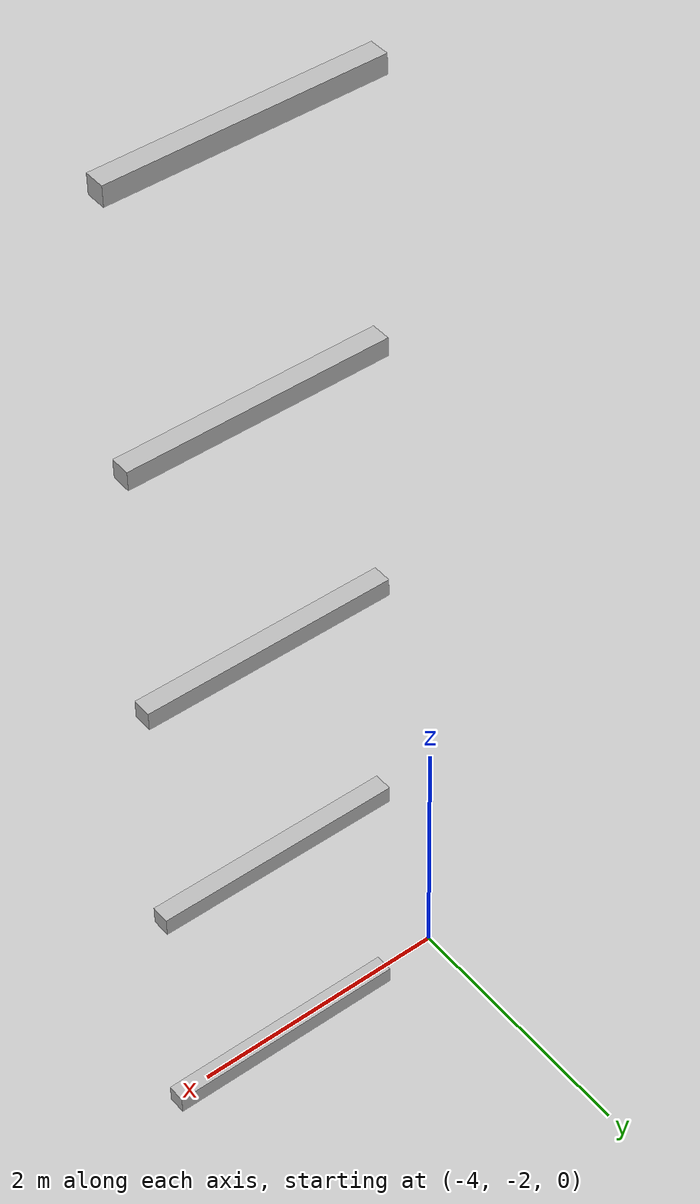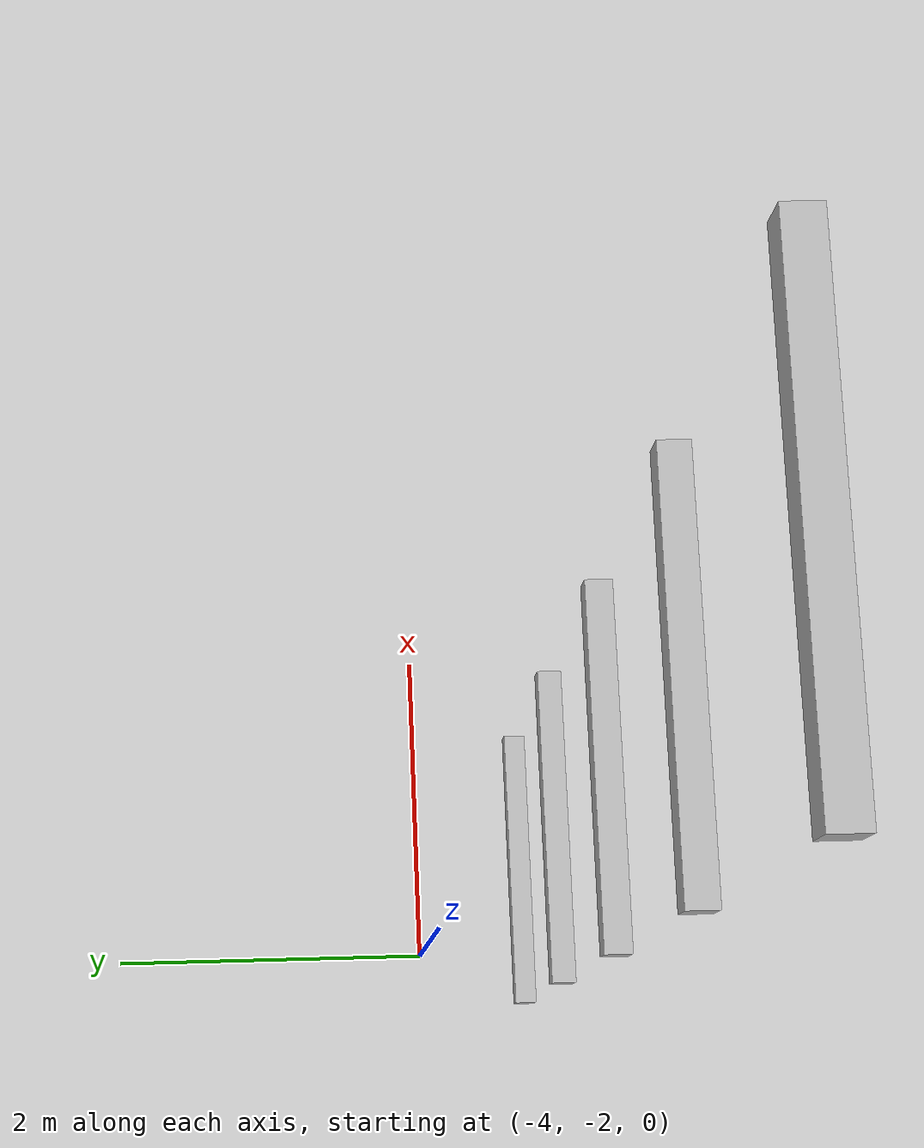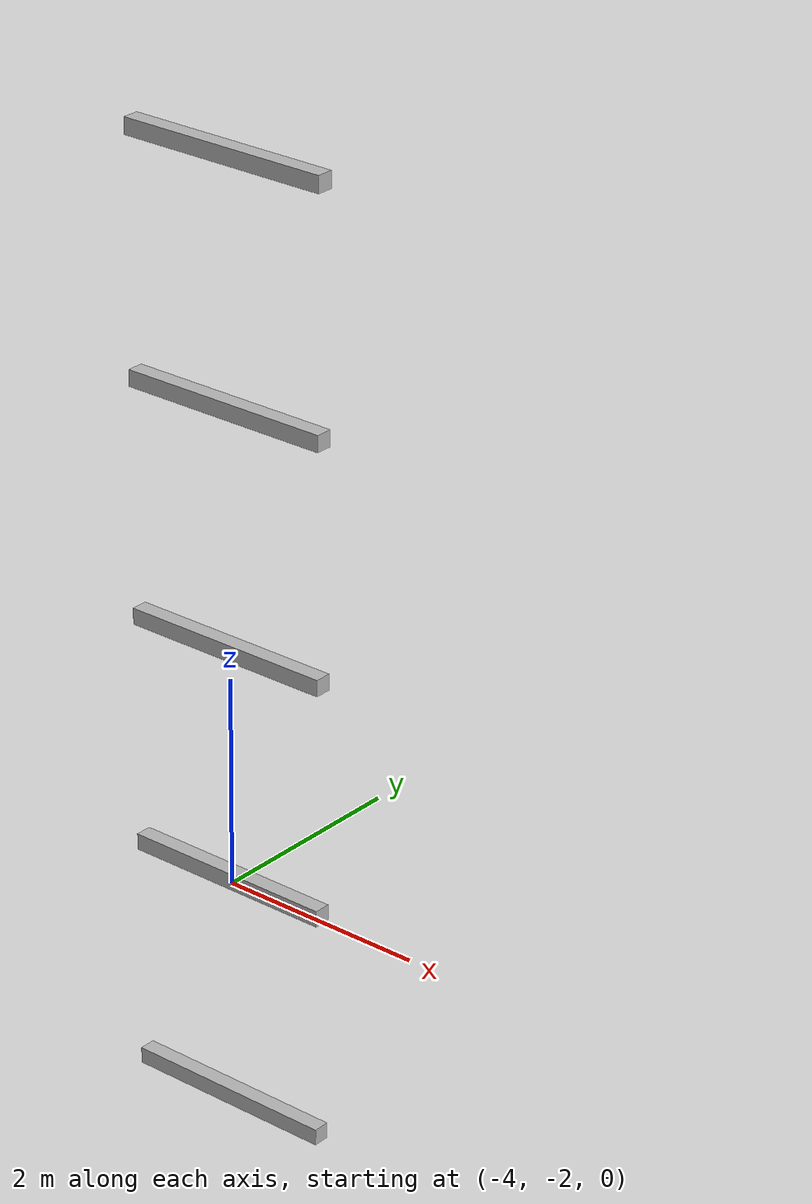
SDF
<sdf version="1.7">
 <world name="default">
  <model name="orthogonal_747_2.000.15_TS">
   <static>1</static>
   <link name="x_link_0_1_1">
    <inertial>
     <mass>1</mass>
     <inertia>
      <ixx>0.166667</ixx>
      <ixy>0</ixy>
      <ixz>0</ixz>
      <iyy>0.166667</iyy>
      <iyz>0</iyz>
      <izz>0.166667</izz>
     </inertia>
    </inertial>
    <pose>3.225 2.15 1.075 0 -0 0</pose>
    <visual name="visual_0">
     <laser_retro>183</laser_retro>
     <geometry><box><size>2 1e-06 0.15</size></box></geometry>
     <material>
      <script><name>Gazebo/Grey</name><uri>file://media/materials/scripts/gazebo.material</uri></script>
      <shader type="pixel"><normal_map>__default__</normal_map></shader>
      <ambient>0.678 0.498 0.659 1</ambient>
      <diffuse>0.7 0.7 0.7 1</diffuse>
      <specular>0.01 0.01 0.01 1</specular>
      <emissive>0 0 0 1</emissive>
     </material>
     <pose>0 -0.075 0 0 -0 0</pose>
     <transparency>1</transparency>
    </visual>
    <visual name="visual_1">
     <laser_retro>184</laser_retro>
     <geometry><box><size>2 1e-06 0.15</size></box></geometry>
     <material>
      <script><name>Gazebo/Grey</name><uri>file://media/materials/scripts/gazebo.material</uri></script>
      <shader type="pixel"><normal_map>__default__</normal_map></shader>
      <ambient>0.447 0.624 0.812 1</ambient>
      <diffuse>0.7 0.7 0.7 1</diffuse>
      <specular>0.01 0.01 0.01 1</specular>
      <emissive>0 0 0 1</emissive>
     </material>
     <pose>0 0.075 0 0 -0 0</pose>
     <transparency>1</transparency>
    </visual>
    <visual name="visual_2">
     <laser_retro>185</laser_retro>
     <geometry><box><size>2 0.15 1e-06</size></box></geometry>
     <material>
      <script><name>Gazebo/Grey</name><uri>file://media/materials/scripts/gazebo.material</uri></script>
      <shader type="pixel"><normal_map>__default__</normal_map></shader>
      <ambient>0.988 0.686 0.243 1</ambient>
      <diffuse>0.7 0.7 0.7 1</diffuse>
      <specular>0.01 0.01 0.01 1</specular>
      <emissive>0 0 0 1</emissive>
     </material>
     <pose>0 0 -0.075 0 -0 0</pose>
     <transparency>1</transparency>
    </visual>
    <visual name="visual_3">
     <laser_retro>186</laser_retro>
     <geometry><box><size>1e-06 0.15 0.15</size></box></geometry>
     <material>
      <script><name>Gazebo/Grey</name><uri>file://media/materials/scripts/gazebo.material</uri></script>
      <shader type="pixel"><normal_map>__default__</normal_map></shader>
      <ambient>0.988 0.914 0.31 1</ambient>
      <diffuse>0.7 0.7 0.7 1</diffuse>
      <specular>0.01 0.01 0.01 1</specular>
      <emissive>0 0 0 1</emissive>
     </material>
     <pose>1 0 0 0 -0 0</pose>
     <transparency>1</transparency>
    </visual>
    <visual name="visual_4">
     <laser_retro>187</laser_retro>
     <geometry><box><size>2 0.15 1e-06</size></box></geometry>
     <material>
      <script><name>Gazebo/Grey</name><uri>file://media/materials/scripts/gazebo.material</uri></script>
      <shader type="pixel"><normal_map>__default__</normal_map></shader>
      <ambient>0.937 0.161 0.161 1</ambient>
      <diffuse>0.7 0.7 0.7 1</diffuse>
      <specular>0.01 0.01 0.01 1</specular>
      <emissive>0 0 0 1</emissive>
     </material>
     <pose>0 0 0.075 0 -0 0</pose>
     <transparency>1</transparency>
    </visual>
    <visual name="visual_5">
     <laser_retro>188</laser_retro>
     <geometry><box><size>1e-06 0.15 0.15</size></box></geometry>
     <material>
      <script><name>Gazebo/Grey</name><uri>file://media/materials/scripts/gazebo.material</uri></script>
      <shader type="pixel"><normal_map>__default__</normal_map></shader>
      <ambient>0.541 0.886 0.204 1</ambient>
      <diffuse>0.7 0.7 0.7 1</diffuse>
      <specular>0.01 0.01 0.01 1</specular>
      <emissive>0 0 0 1</emissive>
     </material>
     <pose>-1 0 0 0 -0 0</pose>
     <transparency>1</transparency>
    </visual>
    <visual name="visual_texture">
     <geometry><box><size>1.9998 0.149985 0.149985</size></box></geometry>
     <material>
      <script>
       <uri>model://BASE_MODELS/simple_block_v2_textured/materials/scripts</uri>
       <uri>model://BASE_MODELS/simple_block_v2_textured/materials/textures</uri>
       <name>metal</name>
      </script>
     </material>
     <laser_retro>189</laser_retro>
    </visual>
    <collision name="collision">
     <geometry><box><size>2 0.15 0.15</size></box></geometry>
     <surface>
      <friction>
       <ode><mu>1</mu><mu2>1</mu2><fdir1>0 0 0</fdir1><slip1>0</slip1><slip2>0</slip2></ode>
       <torsional>
        <coefficient>1</coefficient>
        <patch_radius>0</patch_radius>
        <surface_radius>0</surface_radius>
        <use_patch_radius>1</use_patch_radius>
        <ode><slip>0</slip></ode>
       </torsional>
      </friction>
      <bounce><restitution_coefficient>0</restitution_coefficient><threshold>1e+06</threshold></bounce>
      <contact>
       <collide_without_contact>0</collide_without_contact>
       <collide_without_contact_bitmask>1</collide_without_contact_bitmask>
       <collide_bitmask>1</collide_bitmask>
       <ode>
        <soft_cfm>0</soft_cfm>
        <soft_erp>0.2</soft_erp>
        <kp>1e+13</kp>
        <kd>1</kd>
        <max_vel>0.01</max_vel>
        <min_depth>0</min_depth>
       </ode>
       <bullet>
        <split_impulse>1</split_impulse>
        <split_impulse_penetration_threshold>-0.01</split_impulse_penetration_threshold>
        <soft_cfm>0</soft_cfm>
        <soft_erp>0.2</soft_erp>
        <kp>1e+13</kp>
        <kd>1</kd>
       </bullet>
      </contact>
     </surface>
    </collision>
   </link>
   <link name="x_link_1_1_1">
    <inertial>
     <mass>1</mass>
     <inertia>
      <ixx>0.166667</ixx>
      <ixy>0</ixy>
      <ixz>0</ixz>
      <iyy>0.166667</iyy>
      <iyz>0</iyz>
      <izz>0.166667</izz>
     </inertia>
    </inertial>
    <pose>3.225 2.15 3.225 0 -0 0</pose>
    <visual name="visual_0">
     <laser_retro>995</laser_retro>
     <geometry><box><size>2 1e-06 0.15</size></box></geometry>
     <material>
      <script><name>Gazebo/Grey</name><uri>file://media/materials/scripts/gazebo.material</uri></script>
      <shader type="pixel"><normal_map>__default__</normal_map></shader>
      <ambient>0.678 0.498 0.659 1</ambient>
      <diffuse>0.7 0.7 0.7 1</diffuse>
      <specular>0.01 0.01 0.01 1</specular>
      <emissive>0 0 0 1</emissive>
     </material>
     <pose>0 -0.075 0 0 -0 0</pose>
     <transparency>1</transparency>
    </visual>
    <visual name="visual_1">
     <laser_retro>996</laser_retro>
     <geometry><box><size>2 1e-06 0.15</size></box></geometry>
     <material>
      <script><name>Gazebo/Grey</name><uri>file://media/materials/scripts/gazebo.material</uri></script>
      <shader type="pixel"><normal_map>__default__</normal_map></shader>
      <ambient>0.447 0.624 0.812 1</ambient>
      <diffuse>0.7 0.7 0.7 1</diffuse>
      <specular>0.01 0.01 0.01 1</specular>
      <emissive>0 0 0 1</emissive>
     </material>
     <pose>0 0.075 0 0 -0 0</pose>
     <transparency>1</transparency>
    </visual>
    <visual name="visual_2">
     <laser_retro>997</laser_retro>
     <geometry><box><size>2 0.15 1e-06</size></box></geometry>
     <material>
      <script><name>Gazebo/Grey</name><uri>file://media/materials/scripts/gazebo.material</uri></script>
      <shader type="pixel"><normal_map>__default__</normal_map></shader>
      <ambient>0.988 0.686 0.243 1</ambient>
      <diffuse>0.7 0.7 0.7 1</diffuse>
      <specular>0.01 0.01 0.01 1</specular>
      <emissive>0 0 0 1</emissive>
     </material>
     <pose>0 0 -0.075 0 -0 0</pose>
     <transparency>1</transparency>
    </visual>
    <visual name="visual_3">
     <laser_retro>998</laser_retro>
     <geometry><box><size>1e-06 0.15 0.15</size></box></geometry>
     <material>
      <script><name>Gazebo/Grey</name><uri>file://media/materials/scripts/gazebo.material</uri></script>
      <shader type="pixel"><normal_map>__default__</normal_map></shader>
      <ambient>0.988 0.914 0.31 1</ambient>
      <diffuse>0.7 0.7 0.7 1</diffuse>
      <specular>0.01 0.01 0.01 1</specular>
      <emissive>0 0 0 1</emissive>
     </material>
     <pose>1 0 0 0 -0 0</pose>
     <transparency>1</transparency>
    </visual>
    <visual name="visual_4">
     <laser_retro>999</laser_retro>
     <geometry><box><size>2 0.15 1e-06</size></box></geometry>
     <material>
      <script><name>Gazebo/Grey</name><uri>file://media/materials/scripts/gazebo.material</uri></script>
      <shader type="pixel"><normal_map>__default__</normal_map></shader>
      <ambient>0.937 0.161 0.161 1</ambient>
      <diffuse>0.7 0.7 0.7 1</diffuse>
      <specular>0.01 0.01 0.01 1</specular>
      <emissive>0 0 0 1</emissive>
     </material>
     <pose>0 0 0.075 0 -0 0</pose>
     <transparency>1</transparency>
    </visual>
    <visual name="visual_5">
     <laser_retro>1000</laser_retro>
     <geometry><box><size>1e-06 0.15 0.15</size></box></geometry>
     <material>
      <script><name>Gazebo/Grey</name><uri>file://media/materials/scripts/gazebo.material</uri></script>
      <shader type="pixel"><normal_map>__default__</normal_map></shader>
      <ambient>0.541 0.886 0.204 1</ambient>
      <diffuse>0.7 0.7 0.7 1</diffuse>
      <specular>0.01 0.01 0.01 1</specular>
      <emissive>0 0 0 1</emissive>
     </material>
     <pose>-1 0 0 0 -0 0</pose>
     <transparency>1</transparency>
    </visual>
    <visual name="visual_texture">
     <geometry><box><size>1.9998 0.149985 0.149985</size></box></geometry>
     <material>
      <script>
       <uri>model://BASE_MODELS/simple_block_v2_textured/materials/scripts</uri>
       <uri>model://BASE_MODELS/simple_block_v2_textured/materials/textures</uri>
       <name>metal</name>
      </script>
     </material>
     <laser_retro>1001</laser_retro>
    </visual>
    <collision name="collision">
     <geometry><box><size>2 0.15 0.15</size></box></geometry>
     <surface>
      <friction>
       <ode><mu>1</mu><mu2>1</mu2><fdir1>0 0 0</fdir1><slip1>0</slip1><slip2>0</slip2></ode>
       <torsional>
        <coefficient>1</coefficient>
        <patch_radius>0</patch_radius>
        <surface_radius>0</surface_radius>
        <use_patch_radius>1</use_patch_radius>
        <ode><slip>0</slip></ode>
       </torsional>
      </friction>
      <bounce><restitution_coefficient>0</restitution_coefficient><threshold>1e+06</threshold></bounce>
      <contact>
       <collide_without_contact>0</collide_without_contact>
       <collide_without_contact_bitmask>1</collide_without_contact_bitmask>
       <collide_bitmask>1</collide_bitmask>
       <ode>
        <soft_cfm>0</soft_cfm>
        <soft_erp>0.2</soft_erp>
        <kp>1e+13</kp>
        <kd>1</kd>
        <max_vel>0.01</max_vel>
        <min_depth>0</min_depth>
       </ode>
       <bullet>
        <split_impulse>1</split_impulse>
        <split_impulse_penetration_threshold>-0.01</split_impulse_penetration_threshold>
        <soft_cfm>0</soft_cfm>
        <soft_erp>0.2</soft_erp>
        <kp>1e+13</kp>
        <kd>1</kd>
       </bullet>
      </contact>
     </surface>
    </collision>
   </link>
   <link name="x_link_2_1_1">
    <inertial>
     <mass>1</mass>
     <inertia>
      <ixx>0.166667</ixx>
      <ixy>0</ixy>
      <ixz>0</ixz>
      <iyy>0.166667</iyy>
      <iyz>0</iyz>
      <izz>0.166667</izz>
     </inertia>
    </inertial>
    <pose>3.225 2.15 5.375 0 -0 0</pose>
    <visual name="visual_0">
     <laser_retro>1898</laser_retro>
     <geometry><box><size>2 1e-06 0.15</size></box></geometry>
     <material>
      <script><name>Gazebo/Grey</name><uri>file://media/materials/scripts/gazebo.material</uri></script>
      <shader type="pixel"><normal_map>__default__</normal_map></shader>
      <ambient>0.678 0.498 0.659 1</ambient>
      <diffuse>0.7 0.7 0.7 1</diffuse>
      <specular>0.01 0.01 0.01 1</specular>
      <emissive>0 0 0 1</emissive>
     </material>
     <pose>0 -0.075 0 0 -0 0</pose>
     <transparency>1</transparency>
    </visual>
    <visual name="visual_1">
     <laser_retro>1899</laser_retro>
     <geometry><box><size>2 1e-06 0.15</size></box></geometry>
     <material>
      <script><name>Gazebo/Grey</name><uri>file://media/materials/scripts/gazebo.material</uri></script>
      <shader type="pixel"><normal_map>__default__</normal_map></shader>
      <ambient>0.447 0.624 0.812 1</ambient>
      <diffuse>0.7 0.7 0.7 1</diffuse>
      <specular>0.01 0.01 0.01 1</specular>
      <emissive>0 0 0 1</emissive>
     </material>
     <pose>0 0.075 0 0 -0 0</pose>
     <transparency>1</transparency>
    </visual>
    <visual name="visual_2">
     <laser_retro>1900</laser_retro>
     <geometry><box><size>2 0.15 1e-06</size></box></geometry>
     <material>
      <script><name>Gazebo/Grey</name><uri>file://media/materials/scripts/gazebo.material</uri></script>
      <shader type="pixel"><normal_map>__default__</normal_map></shader>
      <ambient>0.988 0.686 0.243 1</ambient>
      <diffuse>0.7 0.7 0.7 1</diffuse>
      <specular>0.01 0.01 0.01 1</specular>
      <emissive>0 0 0 1</emissive>
     </material>
     <pose>0 0 -0.075 0 -0 0</pose>
     <transparency>1</transparency>
    </visual>
    <visual name="visual_3">
     <laser_retro>1901</laser_retro>
     <geometry><box><size>1e-06 0.15 0.15</size></box></geometry>
     <material>
      <script><name>Gazebo/Grey</name><uri>file://media/materials/scripts/gazebo.material</uri></script>
      <shader type="pixel"><normal_map>__default__</normal_map></shader>
      <ambient>0.988 0.914 0.31 1</ambient>
      <diffuse>0.7 0.7 0.7 1</diffuse>
      <specular>0.01 0.01 0.01 1</specular>
      <emissive>0 0 0 1</emissive>
     </material>
     <pose>1 0 0 0 -0 0</pose>
     <transparency>1</transparency>
    </visual>
    <visual name="visual_4">
     <laser_retro>1902</laser_retro>
     <geometry><box><size>2 0.15 1e-06</size></box></geometry>
     <material>
      <script><name>Gazebo/Grey</name><uri>file://media/materials/scripts/gazebo.material</uri></script>
      <shader type="pixel"><normal_map>__default__</normal_map></shader>
      <ambient>0.937 0.161 0.161 1</ambient>
      <diffuse>0.7 0.7 0.7 1</diffuse>
      <specular>0.01 0.01 0.01 1</specular>
      <emissive>0 0 0 1</emissive>
     </material>
     <pose>0 0 0.075 0 -0 0</pose>
     <transparency>1</transparency>
    </visual>
    <visual name="visual_5">
     <laser_retro>1903</laser_retro>
     <geometry><box><size>1e-06 0.15 0.15</size></box></geometry>
     <material>
      <script><name>Gazebo/Grey</name><uri>file://media/materials/scripts/gazebo.material</uri></script>
      <shader type="pixel"><normal_map>__default__</normal_map></shader>
      <ambient>0.541 0.886 0.204 1</ambient>
      <diffuse>0.7 0.7 0.7 1</diffuse>
      <specular>0.01 0.01 0.01 1</specular>
      <emissive>0 0 0 1</emissive>
     </material>
     <pose>-1 0 0 0 -0 0</pose>
     <transparency>1</transparency>
    </visual>
    <visual name="visual_texture">
     <geometry><box><size>1.9998 0.149985 0.149985</size></box></geometry>
     <material>
      <script>
       <uri>model://BASE_MODELS/simple_block_v2_textured/materials/scripts</uri>
       <uri>model://BASE_MODELS/simple_block_v2_textured/materials/textures</uri>
       <name>metal</name>
      </script>
     </material>
     <laser_retro>1904</laser_retro>
    </visual>
    <collision name="collision">
     <geometry><box><size>2 0.15 0.15</size></box></geometry>
     <surface>
      <friction>
       <ode><mu>1</mu><mu2>1</mu2><fdir1>0 0 0</fdir1><slip1>0</slip1><slip2>0</slip2></ode>
       <torsional>
        <coefficient>1</coefficient>
        <patch_radius>0</patch_radius>
        <surface_radius>0</surface_radius>
        <use_patch_radius>1</use_patch_radius>
        <ode><slip>0</slip></ode>
       </torsional>
      </friction>
      <bounce><restitution_coefficient>0</restitution_coefficient><threshold>1e+06</threshold></bounce>
      <contact>
       <collide_without_contact>0</collide_without_contact>
       <collide_without_contact_bitmask>1</collide_without_contact_bitmask>
       <collide_bitmask>1</collide_bitmask>
       <ode>
        <soft_cfm>0</soft_cfm>
        <soft_erp>0.2</soft_erp>
        <kp>1e+13</kp>
        <kd>1</kd>
        <max_vel>0.01</max_vel>
        <min_depth>0</min_depth>
       </ode>
       <bullet>
        <split_impulse>1</split_impulse>
        <split_impulse_penetration_threshold>-0.01</split_impulse_penetration_threshold>
        <soft_cfm>0</soft_cfm>
        <soft_erp>0.2</soft_erp>
        <kp>1e+13</kp>
        <kd>1</kd>
       </bullet>
      </contact>
     </surface>
    </collision>
   </link>
   <link name="x_link_3_1_1">
    <inertial>
     <mass>1</mass>
     <inertia>
      <ixx>0.166667</ixx>
      <ixy>0</ixy>
      <ixz>0</ixz>
      <iyy>0.166667</iyy>
      <iyz>0</iyz>
      <izz>0.166667</izz>
     </inertia>
    </inertial>
    <pose>3.225 2.15 7.525 0 -0 0</pose>
    <visual name="visual_0">
     <laser_retro>2801</laser_retro>
     <geometry><box><size>2 1e-06 0.15</size></box></geometry>
     <material>
      <script><name>Gazebo/Grey</name><uri>file://media/materials/scripts/gazebo.material</uri></script>
      <shader type="pixel"><normal_map>__default__</normal_map></shader>
      <ambient>0.678 0.498 0.659 1</ambient>
      <diffuse>0.7 0.7 0.7 1</diffuse>
      <specular>0.01 0.01 0.01 1</specular>
      <emissive>0 0 0 1</emissive>
     </material>
     <pose>0 -0.075 0 0 -0 0</pose>
     <transparency>1</transparency>
    </visual>
    <visual name="visual_1">
     <laser_retro>2802</laser_retro>
     <geometry><box><size>2 1e-06 0.15</size></box></geometry>
     <material>
      <script><name>Gazebo/Grey</name><uri>file://media/materials/scripts/gazebo.material</uri></script>
      <shader type="pixel"><normal_map>__default__</normal_map></shader>
      <ambient>0.447 0.624 0.812 1</ambient>
      <diffuse>0.7 0.7 0.7 1</diffuse>
      <specular>0.01 0.01 0.01 1</specular>
      <emissive>0 0 0 1</emissive>
     </material>
     <pose>0 0.075 0 0 -0 0</pose>
     <transparency>1</transparency>
    </visual>
    <visual name="visual_2">
     <laser_retro>2803</laser_retro>
     <geometry><box><size>2 0.15 1e-06</size></box></geometry>
     <material>
      <script><name>Gazebo/Grey</name><uri>file://media/materials/scripts/gazebo.material</uri></script>
      <shader type="pixel"><normal_map>__default__</normal_map></shader>
      <ambient>0.988 0.686 0.243 1</ambient>
      <diffuse>0.7 0.7 0.7 1</diffuse>
      <specular>0.01 0.01 0.01 1</specular>
      <emissive>0 0 0 1</emissive>
     </material>
     <pose>0 0 -0.075 0 -0 0</pose>
     <transparency>1</transparency>
    </visual>
    <visual name="visual_3">
     <laser_retro>2804</laser_retro>
     <geometry><box><size>1e-06 0.15 0.15</size></box></geometry>
     <material>
      <script><name>Gazebo/Grey</name><uri>file://media/materials/scripts/gazebo.material</uri></script>
      <shader type="pixel"><normal_map>__default__</normal_map></shader>
      <ambient>0.988 0.914 0.31 1</ambient>
      <diffuse>0.7 0.7 0.7 1</diffuse>
      <specular>0.01 0.01 0.01 1</specular>
      <emissive>0 0 0 1</emissive>
     </material>
     <pose>1 0 0 0 -0 0</pose>
     <transparency>1</transparency>
    </visual>
    <visual name="visual_4">
     <laser_retro>2805</laser_retro>
     <geometry><box><size>2 0.15 1e-06</size></box></geometry>
     <material>
      <script><name>Gazebo/Grey</name><uri>file://media/materials/scripts/gazebo.material</uri></script>
      <shader type="pixel"><normal_map>__default__</normal_map></shader>
      <ambient>0.937 0.161 0.161 1</ambient>
      <diffuse>0.7 0.7 0.7 1</diffuse>
      <specular>0.01 0.01 0.01 1</specular>
      <emissive>0 0 0 1</emissive>
     </material>
     <pose>0 0 0.075 0 -0 0</pose>
     <transparency>1</transparency>
    </visual>
    <visual name="visual_5">
     <laser_retro>2806</laser_retro>
     <geometry><box><size>1e-06 0.15 0.15</size></box></geometry>
     <material>
      <script><name>Gazebo/Grey</name><uri>file://media/materials/scripts/gazebo.material</uri></script>
      <shader type="pixel"><normal_map>__default__</normal_map></shader>
      <ambient>0.541 0.886 0.204 1</ambient>
      <diffuse>0.7 0.7 0.7 1</diffuse>
      <specular>0.01 0.01 0.01 1</specular>
      <emissive>0 0 0 1</emissive>
     </material>
     <pose>-1 0 0 0 -0 0</pose>
     <transparency>1</transparency>
    </visual>
    <visual name="visual_texture">
     <geometry><box><size>1.9998 0.149985 0.149985</size></box></geometry>
     <material>
      <script>
       <uri>model://BASE_MODELS/simple_block_v2_textured/materials/scripts</uri>
       <uri>model://BASE_MODELS/simple_block_v2_textured/materials/textures</uri>
       <name>metal</name>
      </script>
     </material>
     <laser_retro>2807</laser_retro>
    </visual>
    <collision name="collision">
     <geometry><box><size>2 0.15 0.15</size></box></geometry>
     <surface>
      <friction>
       <ode><mu>1</mu><mu2>1</mu2><fdir1>0 0 0</fdir1><slip1>0</slip1><slip2>0</slip2></ode>
       <torsional>
        <coefficient>1</coefficient>
        <patch_radius>0</patch_radius>
        <surface_radius>0</surface_radius>
        <use_patch_radius>1</use_patch_radius>
        <ode><slip>0</slip></ode>
       </torsional>
      </friction>
      <bounce><restitution_coefficient>0</restitution_coefficient><threshold>1e+06</threshold></bounce>
      <contact>
       <collide_without_contact>0</collide_without_contact>
       <collide_without_contact_bitmask>1</collide_without_contact_bitmask>
       <collide_bitmask>1</collide_bitmask>
       <ode>
        <soft_cfm>0</soft_cfm>
        <soft_erp>0.2</soft_erp>
        <kp>1e+13</kp>
        <kd>1</kd>
        <max_vel>0.01</max_vel>
        <min_depth>0</min_depth>
       </ode>
       <bullet>
        <split_impulse>1</split_impulse>
        <split_impulse_penetration_threshold>-0.01</split_impulse_penetration_threshold>
        <soft_cfm>0</soft_cfm>
        <soft_erp>0.2</soft_erp>
        <kp>1e+13</kp>
        <kd>1</kd>
       </bullet>
      </contact>
     </surface>
    </collision>
   </link>
   <link name="x_link_4_1_1">
    <inertial>
     <mass>1</mass>
     <inertia>
      <ixx>0.166667</ixx>
      <ixy>0</ixy>
      <ixz>0</ixz>
      <iyy>0.166667</iyy>
      <iyz>0</iyz>
      <izz>0.166667</izz>
     </inertia>
    </inertial>
    <pose>3.225 2.15 9.675 0 -0 0</pose>
    <visual name="visual_0">
     <laser_retro>3704</laser_retro>
     <geometry><box><size>2 1e-06 0.15</size></box></geometry>
     <material>
      <script><name>Gazebo/Grey</name><uri>file://media/materials/scripts/gazebo.material</uri></script>
      <shader type="pixel"><normal_map>__default__</normal_map></shader>
      <ambient>0.678 0.498 0.659 1</ambient>
      <diffuse>0.7 0.7 0.7 1</diffuse>
      <specular>0.01 0.01 0.01 1</specular>
      <emissive>0 0 0 1</emissive>
     </material>
     <pose>0 -0.075 0 0 -0 0</pose>
     <transparency>1</transparency>
    </visual>
    <visual name="visual_1">
     <laser_retro>3705</laser_retro>
     <geometry><box><size>2 1e-06 0.15</size></box></geometry>
     <material>
      <script><name>Gazebo/Grey</name><uri>file://media/materials/scripts/gazebo.material</uri></script>
      <shader type="pixel"><normal_map>__default__</normal_map></shader>
      <ambient>0.447 0.624 0.812 1</ambient>
      <diffuse>0.7 0.7 0.7 1</diffuse>
      <specular>0.01 0.01 0.01 1</specular>
      <emissive>0 0 0 1</emissive>
     </material>
     <pose>0 0.075 0 0 -0 0</pose>
     <transparency>1</transparency>
    </visual>
    <visual name="visual_2">
     <laser_retro>3706</laser_retro>
     <geometry><box><size>2 0.15 1e-06</size></box></geometry>
     <material>
      <script><name>Gazebo/Grey</name><uri>file://media/materials/scripts/gazebo.material</uri></script>
      <shader type="pixel"><normal_map>__default__</normal_map></shader>
      <ambient>0.988 0.686 0.243 1</ambient>
      <diffuse>0.7 0.7 0.7 1</diffuse>
      <specular>0.01 0.01 0.01 1</specular>
      <emissive>0 0 0 1</emissive>
     </material>
     <pose>0 0 -0.075 0 -0 0</pose>
     <transparency>1</transparency>
    </visual>
    <visual name="visual_3">
     <laser_retro>3707</laser_retro>
     <geometry><box><size>1e-06 0.15 0.15</size></box></geometry>
     <material>
      <script><name>Gazebo/Grey</name><uri>file://media/materials/scripts/gazebo.material</uri></script>
      <shader type="pixel"><normal_map>__default__</normal_map></shader>
      <ambient>0.988 0.914 0.31 1</ambient>
      <diffuse>0.7 0.7 0.7 1</diffuse>
      <specular>0.01 0.01 0.01 1</specular>
      <emissive>0 0 0 1</emissive>
     </material>
     <pose>1 0 0 0 -0 0</pose>
     <transparency>1</transparency>
    </visual>
    <visual name="visual_4">
     <laser_retro>3708</laser_retro>
     <geometry><box><size>2 0.15 1e-06</size></box></geometry>
     <material>
      <script><name>Gazebo/Grey</name><uri>file://media/materials/scripts/gazebo.material</uri></script>
      <shader type="pixel"><normal_map>__default__</normal_map></shader>
      <ambient>0.937 0.161 0.161 1</ambient>
      <diffuse>0.7 0.7 0.7 1</diffuse>
      <specular>0.01 0.01 0.01 1</specular>
      <emissive>0 0 0 1</emissive>
     </material>
     <pose>0 0 0.075 0 -0 0</pose>
     <transparency>1</transparency>
    </visual>
    <visual name="visual_5">
     <laser_retro>3709</laser_retro>
     <geometry><box><size>1e-06 0.15 0.15</size></box></geometry>
     <material>
      <script><name>Gazebo/Grey</name><uri>file://media/materials/scripts/gazebo.material</uri></script>
      <shader type="pixel"><normal_map>__default__</normal_map></shader>
      <ambient>0.541 0.886 0.204 1</ambient>
      <diffuse>0.7 0.7 0.7 1</diffuse>
      <specular>0.01 0.01 0.01 1</specular>
      <emissive>0 0 0 1</emissive>
     </material>
     <pose>-1 0 0 0 -0 0</pose>
     <transparency>1</transparency>
    </visual>
    <visual name="visual_texture">
     <geometry><box><size>1.9998 0.149985 0.149985</size></box></geometry>
     <material>
      <script>
       <uri>model://BASE_MODELS/simple_block_v2_textured/materials/scripts</uri>
       <uri>model://BASE_MODELS/simple_block_v2_textured/materials/textures</uri>
       <name>metal</name>
      </script>
     </material>
     <laser_retro>3710</laser_retro>
    </visual>
    <collision name="collision">
     <geometry><box><size>2 0.15 0.15</size></box></geometry>
     <surface>
      <friction>
       <ode><mu>1</mu><mu2>1</mu2><fdir1>0 0 0</fdir1><slip1>0</slip1><slip2>0</slip2></ode>
       <torsional>
        <coefficient>1</coefficient>
        <patch_radius>0</patch_radius>
        <surface_radius>0</surface_radius>
        <use_patch_radius>1</use_patch_radius>
        <ode><slip>0</slip></ode>
       </torsional>
      </friction>
      <bounce><restitution_coefficient>0</restitution_coefficient><threshold>1e+06</threshold></bounce>
      <contact>
       <collide_without_contact>0</collide_without_contact>
       <collide_without_contact_bitmask>1</collide_without_contact_bitmask>
       <collide_bitmask>1</collide_bitmask>
       <ode>
        <soft_cfm>0</soft_cfm>
        <soft_erp>0.2</soft_erp>
        <kp>1e+13</kp>
        <kd>1</kd>
        <max_vel>0.01</max_vel>
        <min_depth>0</min_depth>
       </ode>
       <bullet>
        <split_impulse>1</split_impulse>
        <split_impulse_penetration_threshold>-0.01</split_impulse_penetration_threshold>
        <soft_cfm>0</soft_cfm>
        <soft_erp>0.2</soft_erp>
        <kp>1e+13</kp>
        <kd>1</kd>
       </bullet>
      </contact>
     </surface>
    </collision>
   </link>
   <pose>-6.47624 -5 -2.5 0 -0 0</pose>
  </model>
 </world>
</sdf>
